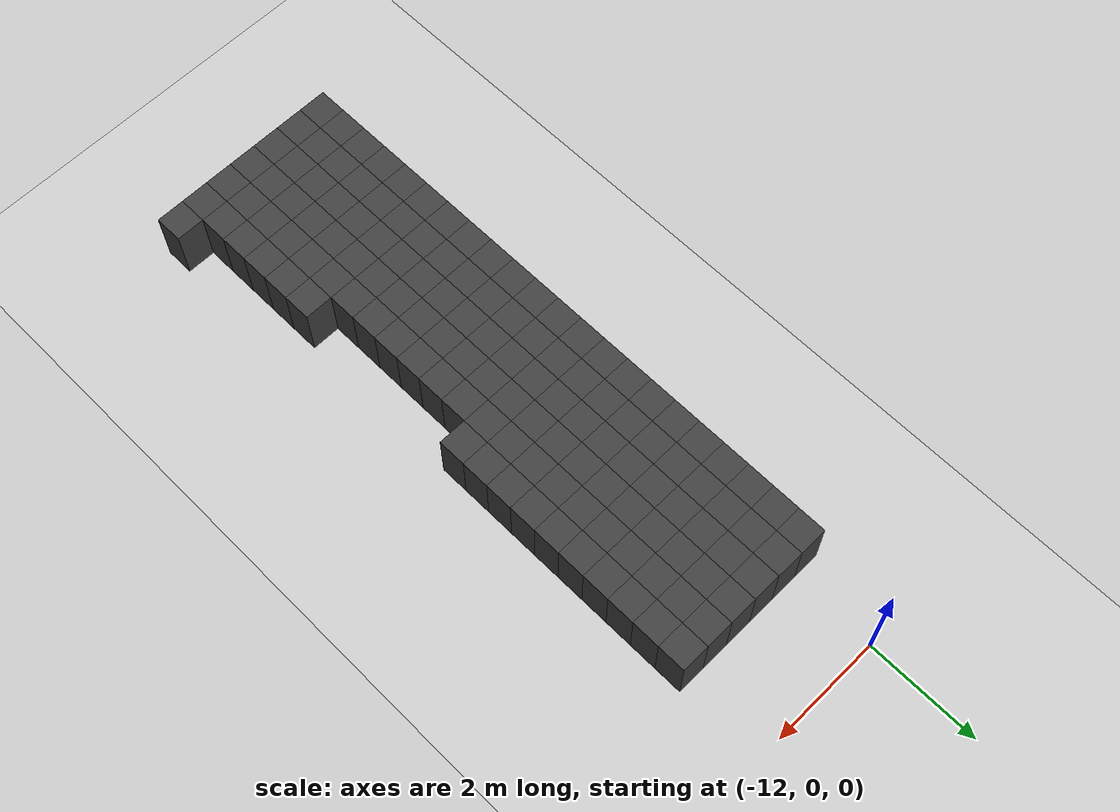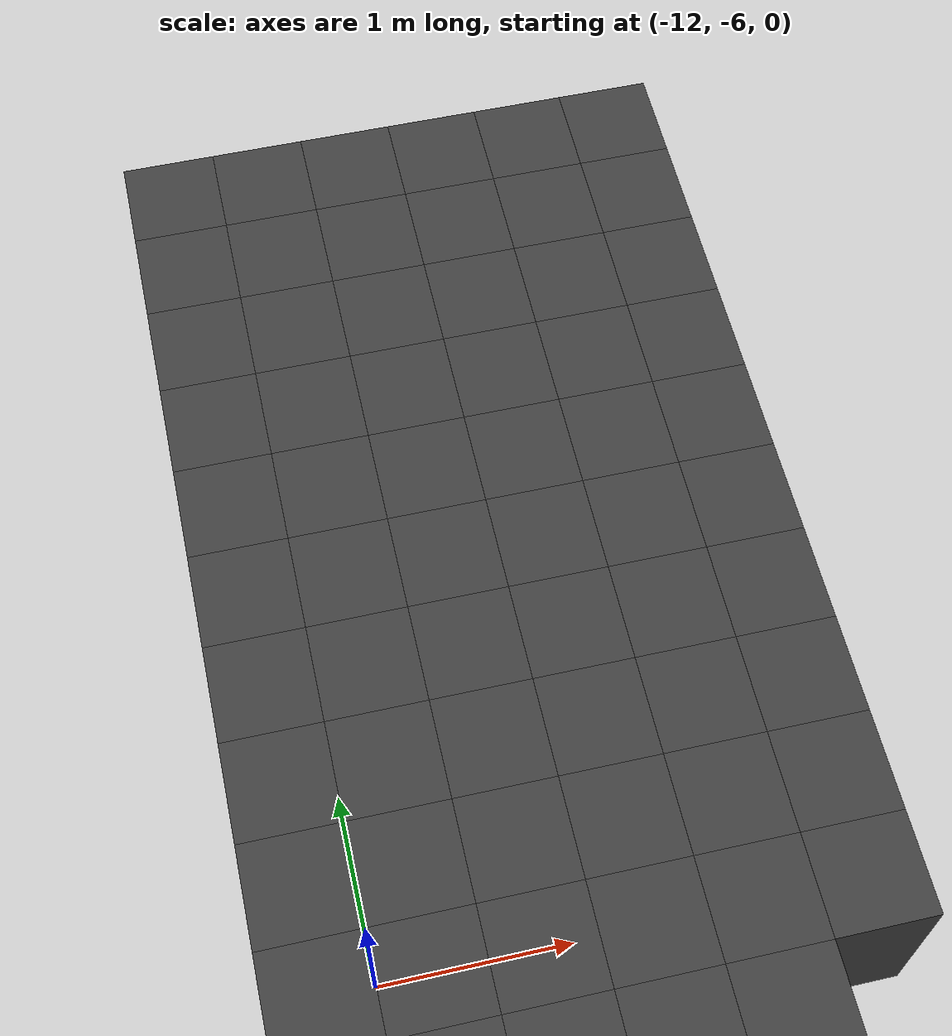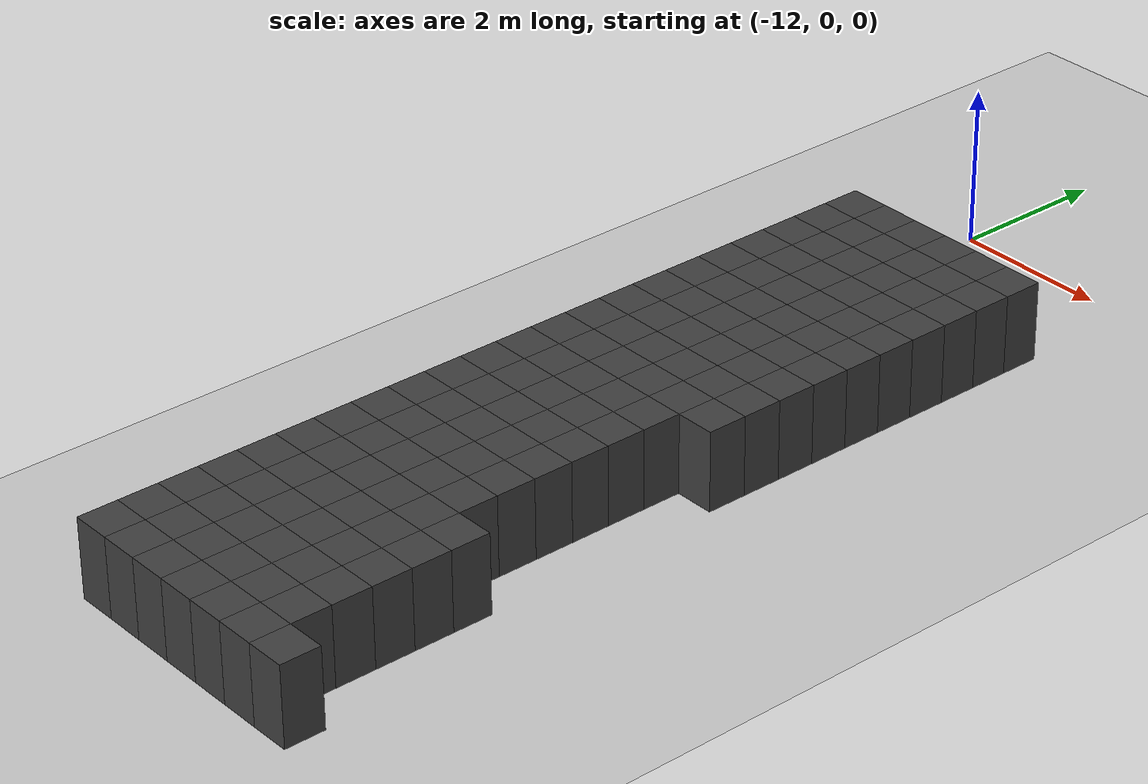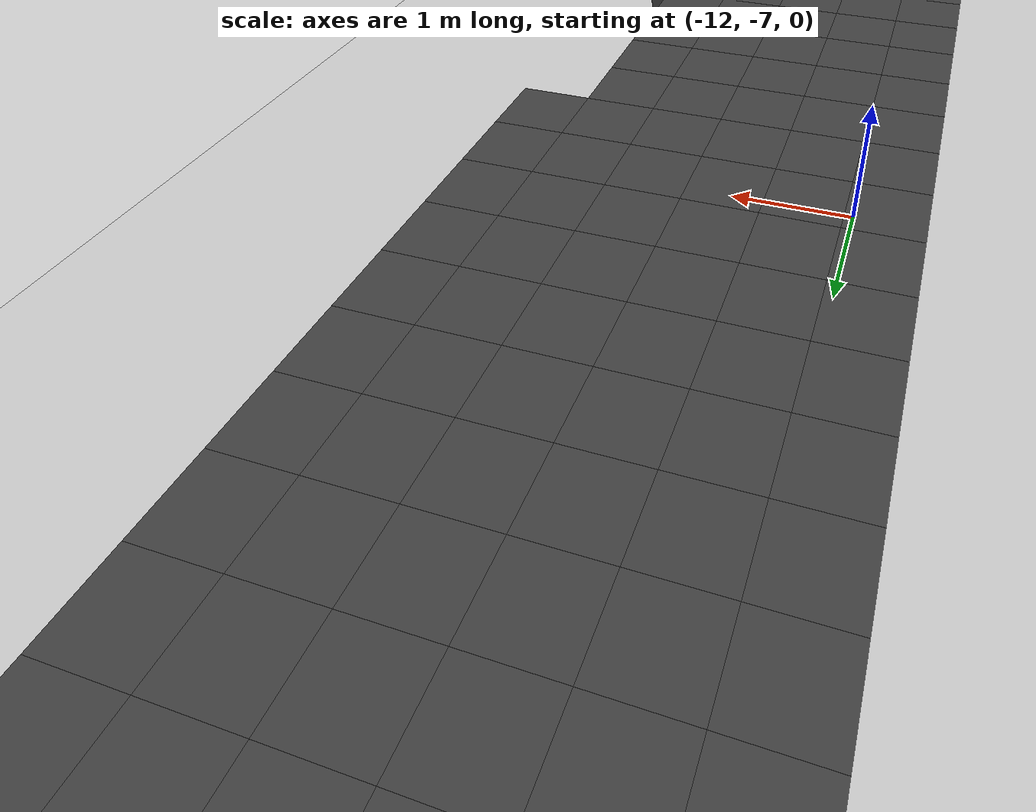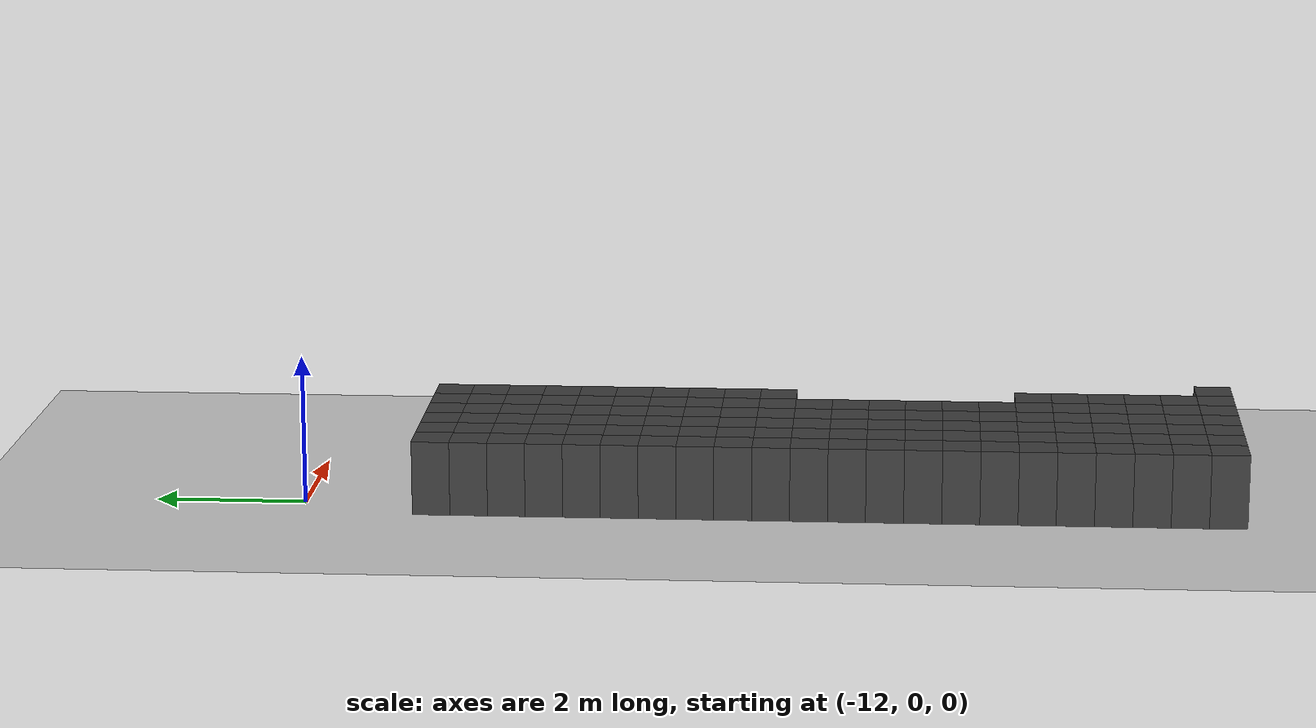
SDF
<sdf version="1.7">
 <world name="map_14980">
  <model name="ground_plane">
   <static>true</static>
   <link name="link">
    <collision name="collision">
     <geometry><plane><normal>0 0 1</normal><size>200 200</size></plane></geometry>
    </collision>
    <visual name="visual">
     <geometry><plane><normal>0 0 1</normal><size>200 200</size></plane></geometry>
     <material><ambient>0.8 0.8 0.8 1</ambient><diffuse>0.8 0.8 0.8 1</diffuse></material>
    </visual>
   </link>
  </model>
  <model name="maze_environment">
   <static>true</static>
   <link name="wall_990">
    <pose>-12.250 -1.750 0.500 0 0 0</pose>
    <collision name="col"><geometry><box><size>0.5 0.5 1.0</size></box></geometry></collision>
    <visual name="vis">
     <geometry><box><size>0.5 0.5 1.0</size></box></geometry>
     <material><ambient>0.15 0.15 0.15 1</ambient><diffuse>0.25 0.25 0.25 1</diffuse></material>
    </visual>
   </link>
   <link name="wall_991">
    <pose>-11.750 -1.750 0.500 0 0 0</pose>
    <collision name="col"><geometry><box><size>0.5 0.5 1.0</size></box></geometry></collision>
    <visual name="vis">
     <geometry><box><size>0.5 0.5 1.0</size></box></geometry>
     <material><ambient>0.15 0.15 0.15 1</ambient><diffuse>0.25 0.25 0.25 1</diffuse></material>
    </visual>
   </link>
   <link name="wall_992">
    <pose>-11.250 -1.750 0.500 0 0 0</pose>
    <collision name="col"><geometry><box><size>0.5 0.5 1.0</size></box></geometry></collision>
    <visual name="vis">
     <geometry><box><size>0.5 0.5 1.0</size></box></geometry>
     <material><ambient>0.15 0.15 0.15 1</ambient><diffuse>0.25 0.25 0.25 1</diffuse></material>
    </visual>
   </link>
   <link name="wall_993">
    <pose>-10.750 -1.750 0.500 0 0 0</pose>
    <collision name="col"><geometry><box><size>0.5 0.5 1.0</size></box></geometry></collision>
    <visual name="vis">
     <geometry><box><size>0.5 0.5 1.0</size></box></geometry>
     <material><ambient>0.15 0.15 0.15 1</ambient><diffuse>0.25 0.25 0.25 1</diffuse></material>
    </visual>
   </link>
   <link name="wall_994">
    <pose>-10.250 -1.750 0.500 0 0 0</pose>
    <collision name="col"><geometry><box><size>0.5 0.5 1.0</size></box></geometry></collision>
    <visual name="vis">
     <geometry><box><size>0.5 0.5 1.0</size></box></geometry>
     <material><ambient>0.15 0.15 0.15 1</ambient><diffuse>0.25 0.25 0.25 1</diffuse></material>
    </visual>
   </link>
   <link name="wall_995">
    <pose>-9.750 -1.750 0.500 0 0 0</pose>
    <collision name="col"><geometry><box><size>0.5 0.5 1.0</size></box></geometry></collision>
    <visual name="vis">
     <geometry><box><size>0.5 0.5 1.0</size></box></geometry>
     <material><ambient>0.15 0.15 0.15 1</ambient><diffuse>0.25 0.25 0.25 1</diffuse></material>
    </visual>
   </link>
   <link name="wall_1029">
    <pose>-12.250 -2.250 0.500 0 0 0</pose>
    <collision name="col"><geometry><box><size>0.5 0.5 1.0</size></box></geometry></collision>
    <visual name="vis">
     <geometry><box><size>0.5 0.5 1.0</size></box></geometry>
     <material><ambient>0.15 0.15 0.15 1</ambient><diffuse>0.25 0.25 0.25 1</diffuse></material>
    </visual>
   </link>
   <link name="wall_1030">
    <pose>-11.750 -2.250 0.500 0 0 0</pose>
    <collision name="col"><geometry><box><size>0.5 0.5 1.0</size></box></geometry></collision>
    <visual name="vis">
     <geometry><box><size>0.5 0.5 1.0</size></box></geometry>
     <material><ambient>0.15 0.15 0.15 1</ambient><diffuse>0.25 0.25 0.25 1</diffuse></material>
    </visual>
   </link>
   <link name="wall_1031">
    <pose>-11.250 -2.250 0.500 0 0 0</pose>
    <collision name="col"><geometry><box><size>0.5 0.5 1.0</size></box></geometry></collision>
    <visual name="vis">
     <geometry><box><size>0.5 0.5 1.0</size></box></geometry>
     <material><ambient>0.15 0.15 0.15 1</ambient><diffuse>0.25 0.25 0.25 1</diffuse></material>
    </visual>
   </link>
   <link name="wall_1032">
    <pose>-10.750 -2.250 0.500 0 0 0</pose>
    <collision name="col"><geometry><box><size>0.5 0.5 1.0</size></box></geometry></collision>
    <visual name="vis">
     <geometry><box><size>0.5 0.5 1.0</size></box></geometry>
     <material><ambient>0.15 0.15 0.15 1</ambient><diffuse>0.25 0.25 0.25 1</diffuse></material>
    </visual>
   </link>
   <link name="wall_1033">
    <pose>-10.250 -2.250 0.500 0 0 0</pose>
    <collision name="col"><geometry><box><size>0.5 0.5 1.0</size></box></geometry></collision>
    <visual name="vis">
     <geometry><box><size>0.5 0.5 1.0</size></box></geometry>
     <material><ambient>0.15 0.15 0.15 1</ambient><diffuse>0.25 0.25 0.25 1</diffuse></material>
    </visual>
   </link>
   <link name="wall_1034">
    <pose>-9.750 -2.250 0.500 0 0 0</pose>
    <collision name="col"><geometry><box><size>0.5 0.5 1.0</size></box></geometry></collision>
    <visual name="vis">
     <geometry><box><size>0.5 0.5 1.0</size></box></geometry>
     <material><ambient>0.15 0.15 0.15 1</ambient><diffuse>0.25 0.25 0.25 1</diffuse></material>
    </visual>
   </link>
   <link name="wall_1065">
    <pose>-12.250 -2.750 0.500 0 0 0</pose>
    <collision name="col"><geometry><box><size>0.5 0.5 1.0</size></box></geometry></collision>
    <visual name="vis">
     <geometry><box><size>0.5 0.5 1.0</size></box></geometry>
     <material><ambient>0.15 0.15 0.15 1</ambient><diffuse>0.25 0.25 0.25 1</diffuse></material>
    </visual>
   </link>
   <link name="wall_1066">
    <pose>-11.750 -2.750 0.500 0 0 0</pose>
    <collision name="col"><geometry><box><size>0.5 0.5 1.0</size></box></geometry></collision>
    <visual name="vis">
     <geometry><box><size>0.5 0.5 1.0</size></box></geometry>
     <material><ambient>0.15 0.15 0.15 1</ambient><diffuse>0.25 0.25 0.25 1</diffuse></material>
    </visual>
   </link>
   <link name="wall_1067">
    <pose>-11.250 -2.750 0.500 0 0 0</pose>
    <collision name="col"><geometry><box><size>0.5 0.5 1.0</size></box></geometry></collision>
    <visual name="vis">
     <geometry><box><size>0.5 0.5 1.0</size></box></geometry>
     <material><ambient>0.15 0.15 0.15 1</ambient><diffuse>0.25 0.25 0.25 1</diffuse></material>
    </visual>
   </link>
   <link name="wall_1068">
    <pose>-10.750 -2.750 0.500 0 0 0</pose>
    <collision name="col"><geometry><box><size>0.5 0.5 1.0</size></box></geometry></collision>
    <visual name="vis">
     <geometry><box><size>0.5 0.5 1.0</size></box></geometry>
     <material><ambient>0.15 0.15 0.15 1</ambient><diffuse>0.25 0.25 0.25 1</diffuse></material>
    </visual>
   </link>
   <link name="wall_1069">
    <pose>-10.250 -2.750 0.500 0 0 0</pose>
    <collision name="col"><geometry><box><size>0.5 0.5 1.0</size></box></geometry></collision>
    <visual name="vis">
     <geometry><box><size>0.5 0.5 1.0</size></box></geometry>
     <material><ambient>0.15 0.15 0.15 1</ambient><diffuse>0.25 0.25 0.25 1</diffuse></material>
    </visual>
   </link>
   <link name="wall_1070">
    <pose>-9.750 -2.750 0.500 0 0 0</pose>
    <collision name="col"><geometry><box><size>0.5 0.5 1.0</size></box></geometry></collision>
    <visual name="vis">
     <geometry><box><size>0.5 0.5 1.0</size></box></geometry>
     <material><ambient>0.15 0.15 0.15 1</ambient><diffuse>0.25 0.25 0.25 1</diffuse></material>
    </visual>
   </link>
   <link name="wall_1101">
    <pose>-12.250 -3.250 0.500 0 0 0</pose>
    <collision name="col"><geometry><box><size>0.5 0.5 1.0</size></box></geometry></collision>
    <visual name="vis">
     <geometry><box><size>0.5 0.5 1.0</size></box></geometry>
     <material><ambient>0.15 0.15 0.15 1</ambient><diffuse>0.25 0.25 0.25 1</diffuse></material>
    </visual>
   </link>
   <link name="wall_1102">
    <pose>-11.750 -3.250 0.500 0 0 0</pose>
    <collision name="col"><geometry><box><size>0.5 0.5 1.0</size></box></geometry></collision>
    <visual name="vis">
     <geometry><box><size>0.5 0.5 1.0</size></box></geometry>
     <material><ambient>0.15 0.15 0.15 1</ambient><diffuse>0.25 0.25 0.25 1</diffuse></material>
    </visual>
   </link>
   <link name="wall_1103">
    <pose>-11.250 -3.250 0.500 0 0 0</pose>
    <collision name="col"><geometry><box><size>0.5 0.5 1.0</size></box></geometry></collision>
    <visual name="vis">
     <geometry><box><size>0.5 0.5 1.0</size></box></geometry>
     <material><ambient>0.15 0.15 0.15 1</ambient><diffuse>0.25 0.25 0.25 1</diffuse></material>
    </visual>
   </link>
   <link name="wall_1104">
    <pose>-10.750 -3.250 0.500 0 0 0</pose>
    <collision name="col"><geometry><box><size>0.5 0.5 1.0</size></box></geometry></collision>
    <visual name="vis">
     <geometry><box><size>0.5 0.5 1.0</size></box></geometry>
     <material><ambient>0.15 0.15 0.15 1</ambient><diffuse>0.25 0.25 0.25 1</diffuse></material>
    </visual>
   </link>
   <link name="wall_1105">
    <pose>-10.250 -3.250 0.500 0 0 0</pose>
    <collision name="col"><geometry><box><size>0.5 0.5 1.0</size></box></geometry></collision>
    <visual name="vis">
     <geometry><box><size>0.5 0.5 1.0</size></box></geometry>
     <material><ambient>0.15 0.15 0.15 1</ambient><diffuse>0.25 0.25 0.25 1</diffuse></material>
    </visual>
   </link>
   <link name="wall_1106">
    <pose>-9.750 -3.250 0.500 0 0 0</pose>
    <collision name="col"><geometry><box><size>0.5 0.5 1.0</size></box></geometry></collision>
    <visual name="vis">
     <geometry><box><size>0.5 0.5 1.0</size></box></geometry>
     <material><ambient>0.15 0.15 0.15 1</ambient><diffuse>0.25 0.25 0.25 1</diffuse></material>
    </visual>
   </link>
   <link name="wall_1139">
    <pose>-12.250 -3.750 0.500 0 0 0</pose>
    <collision name="col"><geometry><box><size>0.5 0.5 1.0</size></box></geometry></collision>
    <visual name="vis">
     <geometry><box><size>0.5 0.5 1.0</size></box></geometry>
     <material><ambient>0.15 0.15 0.15 1</ambient><diffuse>0.25 0.25 0.25 1</diffuse></material>
    </visual>
   </link>
   <link name="wall_1140">
    <pose>-11.750 -3.750 0.500 0 0 0</pose>
    <collision name="col"><geometry><box><size>0.5 0.5 1.0</size></box></geometry></collision>
    <visual name="vis">
     <geometry><box><size>0.5 0.5 1.0</size></box></geometry>
     <material><ambient>0.15 0.15 0.15 1</ambient><diffuse>0.25 0.25 0.25 1</diffuse></material>
    </visual>
   </link>
   <link name="wall_1141">
    <pose>-11.250 -3.750 0.500 0 0 0</pose>
    <collision name="col"><geometry><box><size>0.5 0.5 1.0</size></box></geometry></collision>
    <visual name="vis">
     <geometry><box><size>0.5 0.5 1.0</size></box></geometry>
     <material><ambient>0.15 0.15 0.15 1</ambient><diffuse>0.25 0.25 0.25 1</diffuse></material>
    </visual>
   </link>
   <link name="wall_1142">
    <pose>-10.750 -3.750 0.500 0 0 0</pose>
    <collision name="col"><geometry><box><size>0.5 0.5 1.0</size></box></geometry></collision>
    <visual name="vis">
     <geometry><box><size>0.5 0.5 1.0</size></box></geometry>
     <material><ambient>0.15 0.15 0.15 1</ambient><diffuse>0.25 0.25 0.25 1</diffuse></material>
    </visual>
   </link>
   <link name="wall_1143">
    <pose>-10.250 -3.750 0.500 0 0 0</pose>
    <collision name="col"><geometry><box><size>0.5 0.5 1.0</size></box></geometry></collision>
    <visual name="vis">
     <geometry><box><size>0.5 0.5 1.0</size></box></geometry>
     <material><ambient>0.15 0.15 0.15 1</ambient><diffuse>0.25 0.25 0.25 1</diffuse></material>
    </visual>
   </link>
   <link name="wall_1144">
    <pose>-9.750 -3.750 0.500 0 0 0</pose>
    <collision name="col"><geometry><box><size>0.5 0.5 1.0</size></box></geometry></collision>
    <visual name="vis">
     <geometry><box><size>0.5 0.5 1.0</size></box></geometry>
     <material><ambient>0.15 0.15 0.15 1</ambient><diffuse>0.25 0.25 0.25 1</diffuse></material>
    </visual>
   </link>
   <link name="wall_1184">
    <pose>-12.250 -4.250 0.500 0 0 0</pose>
    <collision name="col"><geometry><box><size>0.5 0.5 1.0</size></box></geometry></collision>
    <visual name="vis">
     <geometry><box><size>0.5 0.5 1.0</size></box></geometry>
     <material><ambient>0.15 0.15 0.15 1</ambient><diffuse>0.25 0.25 0.25 1</diffuse></material>
    </visual>
   </link>
   <link name="wall_1185">
    <pose>-11.750 -4.250 0.500 0 0 0</pose>
    <collision name="col"><geometry><box><size>0.5 0.5 1.0</size></box></geometry></collision>
    <visual name="vis">
     <geometry><box><size>0.5 0.5 1.0</size></box></geometry>
     <material><ambient>0.15 0.15 0.15 1</ambient><diffuse>0.25 0.25 0.25 1</diffuse></material>
    </visual>
   </link>
   <link name="wall_1186">
    <pose>-11.250 -4.250 0.500 0 0 0</pose>
    <collision name="col"><geometry><box><size>0.5 0.5 1.0</size></box></geometry></collision>
    <visual name="vis">
     <geometry><box><size>0.5 0.5 1.0</size></box></geometry>
     <material><ambient>0.15 0.15 0.15 1</ambient><diffuse>0.25 0.25 0.25 1</diffuse></material>
    </visual>
   </link>
   <link name="wall_1187">
    <pose>-10.750 -4.250 0.500 0 0 0</pose>
    <collision name="col"><geometry><box><size>0.5 0.5 1.0</size></box></geometry></collision>
    <visual name="vis">
     <geometry><box><size>0.5 0.5 1.0</size></box></geometry>
     <material><ambient>0.15 0.15 0.15 1</ambient><diffuse>0.25 0.25 0.25 1</diffuse></material>
    </visual>
   </link>
   <link name="wall_1188">
    <pose>-10.250 -4.250 0.500 0 0 0</pose>
    <collision name="col"><geometry><box><size>0.5 0.5 1.0</size></box></geometry></collision>
    <visual name="vis">
     <geometry><box><size>0.5 0.5 1.0</size></box></geometry>
     <material><ambient>0.15 0.15 0.15 1</ambient><diffuse>0.25 0.25 0.25 1</diffuse></material>
    </visual>
   </link>
   <link name="wall_1189">
    <pose>-9.750 -4.250 0.500 0 0 0</pose>
    <collision name="col"><geometry><box><size>0.5 0.5 1.0</size></box></geometry></collision>
    <visual name="vis">
     <geometry><box><size>0.5 0.5 1.0</size></box></geometry>
     <material><ambient>0.15 0.15 0.15 1</ambient><diffuse>0.25 0.25 0.25 1</diffuse></material>
    </visual>
   </link>
   <link name="wall_1229">
    <pose>-12.250 -4.750 0.500 0 0 0</pose>
    <collision name="col"><geometry><box><size>0.5 0.5 1.0</size></box></geometry></collision>
    <visual name="vis">
     <geometry><box><size>0.5 0.5 1.0</size></box></geometry>
     <material><ambient>0.15 0.15 0.15 1</ambient><diffuse>0.25 0.25 0.25 1</diffuse></material>
    </visual>
   </link>
   <link name="wall_1230">
    <pose>-11.750 -4.750 0.500 0 0 0</pose>
    <collision name="col"><geometry><box><size>0.5 0.5 1.0</size></box></geometry></collision>
    <visual name="vis">
     <geometry><box><size>0.5 0.5 1.0</size></box></geometry>
     <material><ambient>0.15 0.15 0.15 1</ambient><diffuse>0.25 0.25 0.25 1</diffuse></material>
    </visual>
   </link>
   <link name="wall_1231">
    <pose>-11.250 -4.750 0.500 0 0 0</pose>
    <collision name="col"><geometry><box><size>0.5 0.5 1.0</size></box></geometry></collision>
    <visual name="vis">
     <geometry><box><size>0.5 0.5 1.0</size></box></geometry>
     <material><ambient>0.15 0.15 0.15 1</ambient><diffuse>0.25 0.25 0.25 1</diffuse></material>
    </visual>
   </link>
   <link name="wall_1232">
    <pose>-10.750 -4.750 0.500 0 0 0</pose>
    <collision name="col"><geometry><box><size>0.5 0.5 1.0</size></box></geometry></collision>
    <visual name="vis">
     <geometry><box><size>0.5 0.5 1.0</size></box></geometry>
     <material><ambient>0.15 0.15 0.15 1</ambient><diffuse>0.25 0.25 0.25 1</diffuse></material>
    </visual>
   </link>
   <link name="wall_1233">
    <pose>-10.250 -4.750 0.500 0 0 0</pose>
    <collision name="col"><geometry><box><size>0.5 0.5 1.0</size></box></geometry></collision>
    <visual name="vis">
     <geometry><box><size>0.5 0.5 1.0</size></box></geometry>
     <material><ambient>0.15 0.15 0.15 1</ambient><diffuse>0.25 0.25 0.25 1</diffuse></material>
    </visual>
   </link>
   <link name="wall_1234">
    <pose>-9.750 -4.750 0.500 0 0 0</pose>
    <collision name="col"><geometry><box><size>0.5 0.5 1.0</size></box></geometry></collision>
    <visual name="vis">
     <geometry><box><size>0.5 0.5 1.0</size></box></geometry>
     <material><ambient>0.15 0.15 0.15 1</ambient><diffuse>0.25 0.25 0.25 1</diffuse></material>
    </visual>
   </link>
   <link name="wall_1270">
    <pose>-12.250 -5.250 0.500 0 0 0</pose>
    <collision name="col"><geometry><box><size>0.5 0.5 1.0</size></box></geometry></collision>
    <visual name="vis">
     <geometry><box><size>0.5 0.5 1.0</size></box></geometry>
     <material><ambient>0.15 0.15 0.15 1</ambient><diffuse>0.25 0.25 0.25 1</diffuse></material>
    </visual>
   </link>
   <link name="wall_1271">
    <pose>-11.750 -5.250 0.500 0 0 0</pose>
    <collision name="col"><geometry><box><size>0.5 0.5 1.0</size></box></geometry></collision>
    <visual name="vis">
     <geometry><box><size>0.5 0.5 1.0</size></box></geometry>
     <material><ambient>0.15 0.15 0.15 1</ambient><diffuse>0.25 0.25 0.25 1</diffuse></material>
    </visual>
   </link>
   <link name="wall_1272">
    <pose>-11.250 -5.250 0.500 0 0 0</pose>
    <collision name="col"><geometry><box><size>0.5 0.5 1.0</size></box></geometry></collision>
    <visual name="vis">
     <geometry><box><size>0.5 0.5 1.0</size></box></geometry>
     <material><ambient>0.15 0.15 0.15 1</ambient><diffuse>0.25 0.25 0.25 1</diffuse></material>
    </visual>
   </link>
   <link name="wall_1273">
    <pose>-10.750 -5.250 0.500 0 0 0</pose>
    <collision name="col"><geometry><box><size>0.5 0.5 1.0</size></box></geometry></collision>
    <visual name="vis">
     <geometry><box><size>0.5 0.5 1.0</size></box></geometry>
     <material><ambient>0.15 0.15 0.15 1</ambient><diffuse>0.25 0.25 0.25 1</diffuse></material>
    </visual>
   </link>
   <link name="wall_1274">
    <pose>-10.250 -5.250 0.500 0 0 0</pose>
    <collision name="col"><geometry><box><size>0.5 0.5 1.0</size></box></geometry></collision>
    <visual name="vis">
     <geometry><box><size>0.5 0.5 1.0</size></box></geometry>
     <material><ambient>0.15 0.15 0.15 1</ambient><diffuse>0.25 0.25 0.25 1</diffuse></material>
    </visual>
   </link>
   <link name="wall_1275">
    <pose>-9.750 -5.250 0.500 0 0 0</pose>
    <collision name="col"><geometry><box><size>0.5 0.5 1.0</size></box></geometry></collision>
    <visual name="vis">
     <geometry><box><size>0.5 0.5 1.0</size></box></geometry>
     <material><ambient>0.15 0.15 0.15 1</ambient><diffuse>0.25 0.25 0.25 1</diffuse></material>
    </visual>
   </link>
   <link name="wall_1314">
    <pose>-12.250 -5.750 0.500 0 0 0</pose>
    <collision name="col"><geometry><box><size>0.5 0.5 1.0</size></box></geometry></collision>
    <visual name="vis">
     <geometry><box><size>0.5 0.5 1.0</size></box></geometry>
     <material><ambient>0.15 0.15 0.15 1</ambient><diffuse>0.25 0.25 0.25 1</diffuse></material>
    </visual>
   </link>
   <link name="wall_1315">
    <pose>-11.750 -5.750 0.500 0 0 0</pose>
    <collision name="col"><geometry><box><size>0.5 0.5 1.0</size></box></geometry></collision>
    <visual name="vis">
     <geometry><box><size>0.5 0.5 1.0</size></box></geometry>
     <material><ambient>0.15 0.15 0.15 1</ambient><diffuse>0.25 0.25 0.25 1</diffuse></material>
    </visual>
   </link>
   <link name="wall_1316">
    <pose>-11.250 -5.750 0.500 0 0 0</pose>
    <collision name="col"><geometry><box><size>0.5 0.5 1.0</size></box></geometry></collision>
    <visual name="vis">
     <geometry><box><size>0.5 0.5 1.0</size></box></geometry>
     <material><ambient>0.15 0.15 0.15 1</ambient><diffuse>0.25 0.25 0.25 1</diffuse></material>
    </visual>
   </link>
   <link name="wall_1317">
    <pose>-10.750 -5.750 0.500 0 0 0</pose>
    <collision name="col"><geometry><box><size>0.5 0.5 1.0</size></box></geometry></collision>
    <visual name="vis">
     <geometry><box><size>0.5 0.5 1.0</size></box></geometry>
     <material><ambient>0.15 0.15 0.15 1</ambient><diffuse>0.25 0.25 0.25 1</diffuse></material>
    </visual>
   </link>
   <link name="wall_1318">
    <pose>-10.250 -5.750 0.500 0 0 0</pose>
    <collision name="col"><geometry><box><size>0.5 0.5 1.0</size></box></geometry></collision>
    <visual name="vis">
     <geometry><box><size>0.5 0.5 1.0</size></box></geometry>
     <material><ambient>0.15 0.15 0.15 1</ambient><diffuse>0.25 0.25 0.25 1</diffuse></material>
    </visual>
   </link>
   <link name="wall_1319">
    <pose>-9.750 -5.750 0.500 0 0 0</pose>
    <collision name="col"><geometry><box><size>0.5 0.5 1.0</size></box></geometry></collision>
    <visual name="vis">
     <geometry><box><size>0.5 0.5 1.0</size></box></geometry>
     <material><ambient>0.15 0.15 0.15 1</ambient><diffuse>0.25 0.25 0.25 1</diffuse></material>
    </visual>
   </link>
   <link name="wall_1358">
    <pose>-12.250 -6.250 0.500 0 0 0</pose>
    <collision name="col"><geometry><box><size>0.5 0.5 1.0</size></box></geometry></collision>
    <visual name="vis">
     <geometry><box><size>0.5 0.5 1.0</size></box></geometry>
     <material><ambient>0.15 0.15 0.15 1</ambient><diffuse>0.25 0.25 0.25 1</diffuse></material>
    </visual>
   </link>
   <link name="wall_1359">
    <pose>-11.750 -6.250 0.500 0 0 0</pose>
    <collision name="col"><geometry><box><size>0.5 0.5 1.0</size></box></geometry></collision>
    <visual name="vis">
     <geometry><box><size>0.5 0.5 1.0</size></box></geometry>
     <material><ambient>0.15 0.15 0.15 1</ambient><diffuse>0.25 0.25 0.25 1</diffuse></material>
    </visual>
   </link>
   <link name="wall_1360">
    <pose>-11.250 -6.250 0.500 0 0 0</pose>
    <collision name="col"><geometry><box><size>0.5 0.5 1.0</size></box></geometry></collision>
    <visual name="vis">
     <geometry><box><size>0.5 0.5 1.0</size></box></geometry>
     <material><ambient>0.15 0.15 0.15 1</ambient><diffuse>0.25 0.25 0.25 1</diffuse></material>
    </visual>
   </link>
   <link name="wall_1361">
    <pose>-10.750 -6.250 0.500 0 0 0</pose>
    <collision name="col"><geometry><box><size>0.5 0.5 1.0</size></box></geometry></collision>
    <visual name="vis">
     <geometry><box><size>0.5 0.5 1.0</size></box></geometry>
     <material><ambient>0.15 0.15 0.15 1</ambient><diffuse>0.25 0.25 0.25 1</diffuse></material>
    </visual>
   </link>
   <link name="wall_1362">
    <pose>-10.250 -6.250 0.500 0 0 0</pose>
    <collision name="col"><geometry><box><size>0.5 0.5 1.0</size></box></geometry></collision>
    <visual name="vis">
     <geometry><box><size>0.5 0.5 1.0</size></box></geometry>
     <material><ambient>0.15 0.15 0.15 1</ambient><diffuse>0.25 0.25 0.25 1</diffuse></material>
    </visual>
   </link>
   <link name="wall_1363">
    <pose>-9.750 -6.250 0.500 0 0 0</pose>
    <collision name="col"><geometry><box><size>0.5 0.5 1.0</size></box></geometry></collision>
    <visual name="vis">
     <geometry><box><size>0.5 0.5 1.0</size></box></geometry>
     <material><ambient>0.15 0.15 0.15 1</ambient><diffuse>0.25 0.25 0.25 1</diffuse></material>
    </visual>
   </link>
   <link name="wall_1402">
    <pose>-12.250 -6.750 0.500 0 0 0</pose>
    <collision name="col"><geometry><box><size>0.5 0.5 1.0</size></box></geometry></collision>
    <visual name="vis">
     <geometry><box><size>0.5 0.5 1.0</size></box></geometry>
     <material><ambient>0.15 0.15 0.15 1</ambient><diffuse>0.25 0.25 0.25 1</diffuse></material>
    </visual>
   </link>
   <link name="wall_1403">
    <pose>-11.750 -6.750 0.500 0 0 0</pose>
    <collision name="col"><geometry><box><size>0.5 0.5 1.0</size></box></geometry></collision>
    <visual name="vis">
     <geometry><box><size>0.5 0.5 1.0</size></box></geometry>
     <material><ambient>0.15 0.15 0.15 1</ambient><diffuse>0.25 0.25 0.25 1</diffuse></material>
    </visual>
   </link>
   <link name="wall_1404">
    <pose>-11.250 -6.750 0.500 0 0 0</pose>
    <collision name="col"><geometry><box><size>0.5 0.5 1.0</size></box></geometry></collision>
    <visual name="vis">
     <geometry><box><size>0.5 0.5 1.0</size></box></geometry>
     <material><ambient>0.15 0.15 0.15 1</ambient><diffuse>0.25 0.25 0.25 1</diffuse></material>
    </visual>
   </link>
   <link name="wall_1405">
    <pose>-10.750 -6.750 0.500 0 0 0</pose>
    <collision name="col"><geometry><box><size>0.5 0.5 1.0</size></box></geometry></collision>
    <visual name="vis">
     <geometry><box><size>0.5 0.5 1.0</size></box></geometry>
     <material><ambient>0.15 0.15 0.15 1</ambient><diffuse>0.25 0.25 0.25 1</diffuse></material>
    </visual>
   </link>
   <link name="wall_1406">
    <pose>-10.250 -6.750 0.500 0 0 0</pose>
    <collision name="col"><geometry><box><size>0.5 0.5 1.0</size></box></geometry></collision>
    <visual name="vis">
     <geometry><box><size>0.5 0.5 1.0</size></box></geometry>
     <material><ambient>0.15 0.15 0.15 1</ambient><diffuse>0.25 0.25 0.25 1</diffuse></material>
    </visual>
   </link>
   <link name="wall_1435">
    <pose>-12.250 -7.250 0.500 0 0 0</pose>
    <collision name="col"><geometry><box><size>0.5 0.5 1.0</size></box></geometry></collision>
    <visual name="vis">
     <geometry><box><size>0.5 0.5 1.0</size></box></geometry>
     <material><ambient>0.15 0.15 0.15 1</ambient><diffuse>0.25 0.25 0.25 1</diffuse></material>
    </visual>
   </link>
   <link name="wall_1436">
    <pose>-11.750 -7.250 0.500 0 0 0</pose>
    <collision name="col"><geometry><box><size>0.5 0.5 1.0</size></box></geometry></collision>
    <visual name="vis">
     <geometry><box><size>0.5 0.5 1.0</size></box></geometry>
     <material><ambient>0.15 0.15 0.15 1</ambient><diffuse>0.25 0.25 0.25 1</diffuse></material>
    </visual>
   </link>
   <link name="wall_1437">
    <pose>-11.250 -7.250 0.500 0 0 0</pose>
    <collision name="col"><geometry><box><size>0.5 0.5 1.0</size></box></geometry></collision>
    <visual name="vis">
     <geometry><box><size>0.5 0.5 1.0</size></box></geometry>
     <material><ambient>0.15 0.15 0.15 1</ambient><diffuse>0.25 0.25 0.25 1</diffuse></material>
    </visual>
   </link>
   <link name="wall_1438">
    <pose>-10.750 -7.250 0.500 0 0 0</pose>
    <collision name="col"><geometry><box><size>0.5 0.5 1.0</size></box></geometry></collision>
    <visual name="vis">
     <geometry><box><size>0.5 0.5 1.0</size></box></geometry>
     <material><ambient>0.15 0.15 0.15 1</ambient><diffuse>0.25 0.25 0.25 1</diffuse></material>
    </visual>
   </link>
   <link name="wall_1439">
    <pose>-10.250 -7.250 0.500 0 0 0</pose>
    <collision name="col"><geometry><box><size>0.5 0.5 1.0</size></box></geometry></collision>
    <visual name="vis">
     <geometry><box><size>0.5 0.5 1.0</size></box></geometry>
     <material><ambient>0.15 0.15 0.15 1</ambient><diffuse>0.25 0.25 0.25 1</diffuse></material>
    </visual>
   </link>
   <link name="wall_1459">
    <pose>-12.250 -7.750 0.500 0 0 0</pose>
    <collision name="col"><geometry><box><size>0.5 0.5 1.0</size></box></geometry></collision>
    <visual name="vis">
     <geometry><box><size>0.5 0.5 1.0</size></box></geometry>
     <material><ambient>0.15 0.15 0.15 1</ambient><diffuse>0.25 0.25 0.25 1</diffuse></material>
    </visual>
   </link>
   <link name="wall_1460">
    <pose>-11.750 -7.750 0.500 0 0 0</pose>
    <collision name="col"><geometry><box><size>0.5 0.5 1.0</size></box></geometry></collision>
    <visual name="vis">
     <geometry><box><size>0.5 0.5 1.0</size></box></geometry>
     <material><ambient>0.15 0.15 0.15 1</ambient><diffuse>0.25 0.25 0.25 1</diffuse></material>
    </visual>
   </link>
   <link name="wall_1461">
    <pose>-11.250 -7.750 0.500 0 0 0</pose>
    <collision name="col"><geometry><box><size>0.5 0.5 1.0</size></box></geometry></collision>
    <visual name="vis">
     <geometry><box><size>0.5 0.5 1.0</size></box></geometry>
     <material><ambient>0.15 0.15 0.15 1</ambient><diffuse>0.25 0.25 0.25 1</diffuse></material>
    </visual>
   </link>
   <link name="wall_1462">
    <pose>-10.750 -7.750 0.500 0 0 0</pose>
    <collision name="col"><geometry><box><size>0.5 0.5 1.0</size></box></geometry></collision>
    <visual name="vis">
     <geometry><box><size>0.5 0.5 1.0</size></box></geometry>
     <material><ambient>0.15 0.15 0.15 1</ambient><diffuse>0.25 0.25 0.25 1</diffuse></material>
    </visual>
   </link>
   <link name="wall_1463">
    <pose>-10.250 -7.750 0.500 0 0 0</pose>
    <collision name="col"><geometry><box><size>0.5 0.5 1.0</size></box></geometry></collision>
    <visual name="vis">
     <geometry><box><size>0.5 0.5 1.0</size></box></geometry>
     <material><ambient>0.15 0.15 0.15 1</ambient><diffuse>0.25 0.25 0.25 1</diffuse></material>
    </visual>
   </link>
   <link name="wall_1483">
    <pose>-12.250 -8.250 0.500 0 0 0</pose>
    <collision name="col"><geometry><box><size>0.5 0.5 1.0</size></box></geometry></collision>
    <visual name="vis">
     <geometry><box><size>0.5 0.5 1.0</size></box></geometry>
     <material><ambient>0.15 0.15 0.15 1</ambient><diffuse>0.25 0.25 0.25 1</diffuse></material>
    </visual>
   </link>
   <link name="wall_1484">
    <pose>-11.750 -8.250 0.500 0 0 0</pose>
    <collision name="col"><geometry><box><size>0.5 0.5 1.0</size></box></geometry></collision>
    <visual name="vis">
     <geometry><box><size>0.5 0.5 1.0</size></box></geometry>
     <material><ambient>0.15 0.15 0.15 1</ambient><diffuse>0.25 0.25 0.25 1</diffuse></material>
    </visual>
   </link>
   <link name="wall_1485">
    <pose>-11.250 -8.250 0.500 0 0 0</pose>
    <collision name="col"><geometry><box><size>0.5 0.5 1.0</size></box></geometry></collision>
    <visual name="vis">
     <geometry><box><size>0.5 0.5 1.0</size></box></geometry>
     <material><ambient>0.15 0.15 0.15 1</ambient><diffuse>0.25 0.25 0.25 1</diffuse></material>
    </visual>
   </link>
   <link name="wall_1486">
    <pose>-10.750 -8.250 0.500 0 0 0</pose>
    <collision name="col"><geometry><box><size>0.5 0.5 1.0</size></box></geometry></collision>
    <visual name="vis">
     <geometry><box><size>0.5 0.5 1.0</size></box></geometry>
     <material><ambient>0.15 0.15 0.15 1</ambient><diffuse>0.25 0.25 0.25 1</diffuse></material>
    </visual>
   </link>
   <link name="wall_1487">
    <pose>-10.250 -8.250 0.500 0 0 0</pose>
    <collision name="col"><geometry><box><size>0.5 0.5 1.0</size></box></geometry></collision>
    <visual name="vis">
     <geometry><box><size>0.5 0.5 1.0</size></box></geometry>
     <material><ambient>0.15 0.15 0.15 1</ambient><diffuse>0.25 0.25 0.25 1</diffuse></material>
    </visual>
   </link>
   <link name="wall_1507">
    <pose>-12.250 -8.750 0.500 0 0 0</pose>
    <collision name="col"><geometry><box><size>0.5 0.5 1.0</size></box></geometry></collision>
    <visual name="vis">
     <geometry><box><size>0.5 0.5 1.0</size></box></geometry>
     <material><ambient>0.15 0.15 0.15 1</ambient><diffuse>0.25 0.25 0.25 1</diffuse></material>
    </visual>
   </link>
   <link name="wall_1508">
    <pose>-11.750 -8.750 0.500 0 0 0</pose>
    <collision name="col"><geometry><box><size>0.5 0.5 1.0</size></box></geometry></collision>
    <visual name="vis">
     <geometry><box><size>0.5 0.5 1.0</size></box></geometry>
     <material><ambient>0.15 0.15 0.15 1</ambient><diffuse>0.25 0.25 0.25 1</diffuse></material>
    </visual>
   </link>
   <link name="wall_1509">
    <pose>-11.250 -8.750 0.500 0 0 0</pose>
    <collision name="col"><geometry><box><size>0.5 0.5 1.0</size></box></geometry></collision>
    <visual name="vis">
     <geometry><box><size>0.5 0.5 1.0</size></box></geometry>
     <material><ambient>0.15 0.15 0.15 1</ambient><diffuse>0.25 0.25 0.25 1</diffuse></material>
    </visual>
   </link>
   <link name="wall_1510">
    <pose>-10.750 -8.750 0.500 0 0 0</pose>
    <collision name="col"><geometry><box><size>0.5 0.5 1.0</size></box></geometry></collision>
    <visual name="vis">
     <geometry><box><size>0.5 0.5 1.0</size></box></geometry>
     <material><ambient>0.15 0.15 0.15 1</ambient><diffuse>0.25 0.25 0.25 1</diffuse></material>
    </visual>
   </link>
   <link name="wall_1511">
    <pose>-10.250 -8.750 0.500 0 0 0</pose>
    <collision name="col"><geometry><box><size>0.5 0.5 1.0</size></box></geometry></collision>
    <visual name="vis">
     <geometry><box><size>0.5 0.5 1.0</size></box></geometry>
     <material><ambient>0.15 0.15 0.15 1</ambient><diffuse>0.25 0.25 0.25 1</diffuse></material>
    </visual>
   </link>
   <link name="wall_1533">
    <pose>-12.250 -9.250 0.500 0 0 0</pose>
    <collision name="col"><geometry><box><size>0.5 0.5 1.0</size></box></geometry></collision>
    <visual name="vis">
     <geometry><box><size>0.5 0.5 1.0</size></box></geometry>
     <material><ambient>0.15 0.15 0.15 1</ambient><diffuse>0.25 0.25 0.25 1</diffuse></material>
    </visual>
   </link>
   <link name="wall_1534">
    <pose>-11.750 -9.250 0.500 0 0 0</pose>
    <collision name="col"><geometry><box><size>0.5 0.5 1.0</size></box></geometry></collision>
    <visual name="vis">
     <geometry><box><size>0.5 0.5 1.0</size></box></geometry>
     <material><ambient>0.15 0.15 0.15 1</ambient><diffuse>0.25 0.25 0.25 1</diffuse></material>
    </visual>
   </link>
   <link name="wall_1535">
    <pose>-11.250 -9.250 0.500 0 0 0</pose>
    <collision name="col"><geometry><box><size>0.5 0.5 1.0</size></box></geometry></collision>
    <visual name="vis">
     <geometry><box><size>0.5 0.5 1.0</size></box></geometry>
     <material><ambient>0.15 0.15 0.15 1</ambient><diffuse>0.25 0.25 0.25 1</diffuse></material>
    </visual>
   </link>
   <link name="wall_1536">
    <pose>-10.750 -9.250 0.500 0 0 0</pose>
    <collision name="col"><geometry><box><size>0.5 0.5 1.0</size></box></geometry></collision>
    <visual name="vis">
     <geometry><box><size>0.5 0.5 1.0</size></box></geometry>
     <material><ambient>0.15 0.15 0.15 1</ambient><diffuse>0.25 0.25 0.25 1</diffuse></material>
    </visual>
   </link>
   <link name="wall_1537">
    <pose>-10.250 -9.250 0.500 0 0 0</pose>
    <collision name="col"><geometry><box><size>0.5 0.5 1.0</size></box></geometry></collision>
    <visual name="vis">
     <geometry><box><size>0.5 0.5 1.0</size></box></geometry>
     <material><ambient>0.15 0.15 0.15 1</ambient><diffuse>0.25 0.25 0.25 1</diffuse></material>
    </visual>
   </link>
   <link name="wall_1560">
    <pose>-12.250 -9.750 0.500 0 0 0</pose>
    <collision name="col"><geometry><box><size>0.5 0.5 1.0</size></box></geometry></collision>
    <visual name="vis">
     <geometry><box><size>0.5 0.5 1.0</size></box></geometry>
     <material><ambient>0.15 0.15 0.15 1</ambient><diffuse>0.25 0.25 0.25 1</diffuse></material>
    </visual>
   </link>
   <link name="wall_1561">
    <pose>-11.750 -9.750 0.500 0 0 0</pose>
    <collision name="col"><geometry><box><size>0.5 0.5 1.0</size></box></geometry></collision>
    <visual name="vis">
     <geometry><box><size>0.5 0.5 1.0</size></box></geometry>
     <material><ambient>0.15 0.15 0.15 1</ambient><diffuse>0.25 0.25 0.25 1</diffuse></material>
    </visual>
   </link>
   <link name="wall_1562">
    <pose>-11.250 -9.750 0.500 0 0 0</pose>
    <collision name="col"><geometry><box><size>0.5 0.5 1.0</size></box></geometry></collision>
    <visual name="vis">
     <geometry><box><size>0.5 0.5 1.0</size></box></geometry>
     <material><ambient>0.15 0.15 0.15 1</ambient><diffuse>0.25 0.25 0.25 1</diffuse></material>
    </visual>
   </link>
   <link name="wall_1563">
    <pose>-10.750 -9.750 0.500 0 0 0</pose>
    <collision name="col"><geometry><box><size>0.5 0.5 1.0</size></box></geometry></collision>
    <visual name="vis">
     <geometry><box><size>0.5 0.5 1.0</size></box></geometry>
     <material><ambient>0.15 0.15 0.15 1</ambient><diffuse>0.25 0.25 0.25 1</diffuse></material>
    </visual>
   </link>
   <link name="wall_1564">
    <pose>-10.250 -9.750 0.500 0 0 0</pose>
    <collision name="col"><geometry><box><size>0.5 0.5 1.0</size></box></geometry></collision>
    <visual name="vis">
     <geometry><box><size>0.5 0.5 1.0</size></box></geometry>
     <material><ambient>0.15 0.15 0.15 1</ambient><diffuse>0.25 0.25 0.25 1</diffuse></material>
    </visual>
   </link>
   <link name="wall_1565">
    <pose>-9.750 -9.750 0.500 0 0 0</pose>
    <collision name="col"><geometry><box><size>0.5 0.5 1.0</size></box></geometry></collision>
    <visual name="vis">
     <geometry><box><size>0.5 0.5 1.0</size></box></geometry>
     <material><ambient>0.15 0.15 0.15 1</ambient><diffuse>0.25 0.25 0.25 1</diffuse></material>
    </visual>
   </link>
   <link name="wall_1591">
    <pose>-12.250 -10.250 0.500 0 0 0</pose>
    <collision name="col"><geometry><box><size>0.5 0.5 1.0</size></box></geometry></collision>
    <visual name="vis">
     <geometry><box><size>0.5 0.5 1.0</size></box></geometry>
     <material><ambient>0.15 0.15 0.15 1</ambient><diffuse>0.25 0.25 0.25 1</diffuse></material>
    </visual>
   </link>
   <link name="wall_1592">
    <pose>-11.750 -10.250 0.500 0 0 0</pose>
    <collision name="col"><geometry><box><size>0.5 0.5 1.0</size></box></geometry></collision>
    <visual name="vis">
     <geometry><box><size>0.5 0.5 1.0</size></box></geometry>
     <material><ambient>0.15 0.15 0.15 1</ambient><diffuse>0.25 0.25 0.25 1</diffuse></material>
    </visual>
   </link>
   <link name="wall_1593">
    <pose>-11.250 -10.250 0.500 0 0 0</pose>
    <collision name="col"><geometry><box><size>0.5 0.5 1.0</size></box></geometry></collision>
    <visual name="vis">
     <geometry><box><size>0.5 0.5 1.0</size></box></geometry>
     <material><ambient>0.15 0.15 0.15 1</ambient><diffuse>0.25 0.25 0.25 1</diffuse></material>
    </visual>
   </link>
   <link name="wall_1594">
    <pose>-10.750 -10.250 0.500 0 0 0</pose>
    <collision name="col"><geometry><box><size>0.5 0.5 1.0</size></box></geometry></collision>
    <visual name="vis">
     <geometry><box><size>0.5 0.5 1.0</size></box></geometry>
     <material><ambient>0.15 0.15 0.15 1</ambient><diffuse>0.25 0.25 0.25 1</diffuse></material>
    </visual>
   </link>
   <link name="wall_1595">
    <pose>-10.250 -10.250 0.500 0 0 0</pose>
    <collision name="col"><geometry><box><size>0.5 0.5 1.0</size></box></geometry></collision>
    <visual name="vis">
     <geometry><box><size>0.5 0.5 1.0</size></box></geometry>
     <material><ambient>0.15 0.15 0.15 1</ambient><diffuse>0.25 0.25 0.25 1</diffuse></material>
    </visual>
   </link>
   <link name="wall_1596">
    <pose>-9.750 -10.250 0.500 0 0 0</pose>
    <collision name="col"><geometry><box><size>0.5 0.5 1.0</size></box></geometry></collision>
    <visual name="vis">
     <geometry><box><size>0.5 0.5 1.0</size></box></geometry>
     <material><ambient>0.15 0.15 0.15 1</ambient><diffuse>0.25 0.25 0.25 1</diffuse></material>
    </visual>
   </link>
   <link name="wall_1622">
    <pose>-12.250 -10.750 0.500 0 0 0</pose>
    <collision name="col"><geometry><box><size>0.5 0.5 1.0</size></box></geometry></collision>
    <visual name="vis">
     <geometry><box><size>0.5 0.5 1.0</size></box></geometry>
     <material><ambient>0.15 0.15 0.15 1</ambient><diffuse>0.25 0.25 0.25 1</diffuse></material>
    </visual>
   </link>
   <link name="wall_1623">
    <pose>-11.750 -10.750 0.500 0 0 0</pose>
    <collision name="col"><geometry><box><size>0.5 0.5 1.0</size></box></geometry></collision>
    <visual name="vis">
     <geometry><box><size>0.5 0.5 1.0</size></box></geometry>
     <material><ambient>0.15 0.15 0.15 1</ambient><diffuse>0.25 0.25 0.25 1</diffuse></material>
    </visual>
   </link>
   <link name="wall_1624">
    <pose>-11.250 -10.750 0.500 0 0 0</pose>
    <collision name="col"><geometry><box><size>0.5 0.5 1.0</size></box></geometry></collision>
    <visual name="vis">
     <geometry><box><size>0.5 0.5 1.0</size></box></geometry>
     <material><ambient>0.15 0.15 0.15 1</ambient><diffuse>0.25 0.25 0.25 1</diffuse></material>
    </visual>
   </link>
   <link name="wall_1625">
    <pose>-10.750 -10.750 0.500 0 0 0</pose>
    <collision name="col"><geometry><box><size>0.5 0.5 1.0</size></box></geometry></collision>
    <visual name="vis">
     <geometry><box><size>0.5 0.5 1.0</size></box></geometry>
     <material><ambient>0.15 0.15 0.15 1</ambient><diffuse>0.25 0.25 0.25 1</diffuse></material>
    </visual>
   </link>
   <link name="wall_1626">
    <pose>-10.250 -10.750 0.500 0 0 0</pose>
    <collision name="col"><geometry><box><size>0.5 0.5 1.0</size></box></geometry></collision>
    <visual name="vis">
     <geometry><box><size>0.5 0.5 1.0</size></box></geometry>
     <material><ambient>0.15 0.15 0.15 1</ambient><diffuse>0.25 0.25 0.25 1</diffuse></material>
    </visual>
   </link>
   <link name="wall_1627">
    <pose>-9.750 -10.750 0.500 0 0 0</pose>
    <collision name="col"><geometry><box><size>0.5 0.5 1.0</size></box></geometry></collision>
    <visual name="vis">
     <geometry><box><size>0.5 0.5 1.0</size></box></geometry>
     <material><ambient>0.15 0.15 0.15 1</ambient><diffuse>0.25 0.25 0.25 1</diffuse></material>
    </visual>
   </link>
   <link name="wall_1655">
    <pose>-12.250 -11.250 0.500 0 0 0</pose>
    <collision name="col"><geometry><box><size>0.5 0.5 1.0</size></box></geometry></collision>
    <visual name="vis">
     <geometry><box><size>0.5 0.5 1.0</size></box></geometry>
     <material><ambient>0.15 0.15 0.15 1</ambient><diffuse>0.25 0.25 0.25 1</diffuse></material>
    </visual>
   </link>
   <link name="wall_1656">
    <pose>-11.750 -11.250 0.500 0 0 0</pose>
    <collision name="col"><geometry><box><size>0.5 0.5 1.0</size></box></geometry></collision>
    <visual name="vis">
     <geometry><box><size>0.5 0.5 1.0</size></box></geometry>
     <material><ambient>0.15 0.15 0.15 1</ambient><diffuse>0.25 0.25 0.25 1</diffuse></material>
    </visual>
   </link>
   <link name="wall_1657">
    <pose>-11.250 -11.250 0.500 0 0 0</pose>
    <collision name="col"><geometry><box><size>0.5 0.5 1.0</size></box></geometry></collision>
    <visual name="vis">
     <geometry><box><size>0.5 0.5 1.0</size></box></geometry>
     <material><ambient>0.15 0.15 0.15 1</ambient><diffuse>0.25 0.25 0.25 1</diffuse></material>
    </visual>
   </link>
   <link name="wall_1658">
    <pose>-10.750 -11.250 0.500 0 0 0</pose>
    <collision name="col"><geometry><box><size>0.5 0.5 1.0</size></box></geometry></collision>
    <visual name="vis">
     <geometry><box><size>0.5 0.5 1.0</size></box></geometry>
     <material><ambient>0.15 0.15 0.15 1</ambient><diffuse>0.25 0.25 0.25 1</diffuse></material>
    </visual>
   </link>
   <link name="wall_1659">
    <pose>-10.250 -11.250 0.500 0 0 0</pose>
    <collision name="col"><geometry><box><size>0.5 0.5 1.0</size></box></geometry></collision>
    <visual name="vis">
     <geometry><box><size>0.5 0.5 1.0</size></box></geometry>
     <material><ambient>0.15 0.15 0.15 1</ambient><diffuse>0.25 0.25 0.25 1</diffuse></material>
    </visual>
   </link>
   <link name="wall_1660">
    <pose>-9.750 -11.250 0.500 0 0 0</pose>
    <collision name="col"><geometry><box><size>0.5 0.5 1.0</size></box></geometry></collision>
    <visual name="vis">
     <geometry><box><size>0.5 0.5 1.0</size></box></geometry>
     <material><ambient>0.15 0.15 0.15 1</ambient><diffuse>0.25 0.25 0.25 1</diffuse></material>
    </visual>
   </link>
   <link name="wall_1691">
    <pose>-12.250 -11.750 0.500 0 0 0</pose>
    <collision name="col"><geometry><box><size>0.5 0.5 1.0</size></box></geometry></collision>
    <visual name="vis">
     <geometry><box><size>0.5 0.5 1.0</size></box></geometry>
     <material><ambient>0.15 0.15 0.15 1</ambient><diffuse>0.25 0.25 0.25 1</diffuse></material>
    </visual>
   </link>
   <link name="wall_1692">
    <pose>-11.750 -11.750 0.500 0 0 0</pose>
    <collision name="col"><geometry><box><size>0.5 0.5 1.0</size></box></geometry></collision>
    <visual name="vis">
     <geometry><box><size>0.5 0.5 1.0</size></box></geometry>
     <material><ambient>0.15 0.15 0.15 1</ambient><diffuse>0.25 0.25 0.25 1</diffuse></material>
    </visual>
   </link>
   <link name="wall_1693">
    <pose>-11.250 -11.750 0.500 0 0 0</pose>
    <collision name="col"><geometry><box><size>0.5 0.5 1.0</size></box></geometry></collision>
    <visual name="vis">
     <geometry><box><size>0.5 0.5 1.0</size></box></geometry>
     <material><ambient>0.15 0.15 0.15 1</ambient><diffuse>0.25 0.25 0.25 1</diffuse></material>
    </visual>
   </link>
   <link name="wall_1694">
    <pose>-10.750 -11.750 0.500 0 0 0</pose>
    <collision name="col"><geometry><box><size>0.5 0.5 1.0</size></box></geometry></collision>
    <visual name="vis">
     <geometry><box><size>0.5 0.5 1.0</size></box></geometry>
     <material><ambient>0.15 0.15 0.15 1</ambient><diffuse>0.25 0.25 0.25 1</diffuse></material>
    </visual>
   </link>
   <link name="wall_1695">
    <pose>-10.250 -11.750 0.500 0 0 0</pose>
    <collision name="col"><geometry><box><size>0.5 0.5 1.0</size></box></geometry></collision>
    <visual name="vis">
     <geometry><box><size>0.5 0.5 1.0</size></box></geometry>
     <material><ambient>0.15 0.15 0.15 1</ambient><diffuse>0.25 0.25 0.25 1</diffuse></material>
    </visual>
   </link>
   <link name="wall_1696">
    <pose>-9.750 -11.750 0.500 0 0 0</pose>
    <collision name="col"><geometry><box><size>0.5 0.5 1.0</size></box></geometry></collision>
    <visual name="vis">
     <geometry><box><size>0.5 0.5 1.0</size></box></geometry>
     <material><ambient>0.15 0.15 0.15 1</ambient><diffuse>0.25 0.25 0.25 1</diffuse></material>
    </visual>
   </link>
   <link name="wall_1738">
    <pose>-12.250 -12.250 0.500 0 0 0</pose>
    <collision name="col"><geometry><box><size>0.5 0.5 1.0</size></box></geometry></collision>
    <visual name="vis">
     <geometry><box><size>0.5 0.5 1.0</size></box></geometry>
     <material><ambient>0.15 0.15 0.15 1</ambient><diffuse>0.25 0.25 0.25 1</diffuse></material>
    </visual>
   </link>
   <link name="wall_1739">
    <pose>-11.750 -12.250 0.500 0 0 0</pose>
    <collision name="col"><geometry><box><size>0.5 0.5 1.0</size></box></geometry></collision>
    <visual name="vis">
     <geometry><box><size>0.5 0.5 1.0</size></box></geometry>
     <material><ambient>0.15 0.15 0.15 1</ambient><diffuse>0.25 0.25 0.25 1</diffuse></material>
    </visual>
   </link>
   <link name="wall_1740">
    <pose>-11.250 -12.250 0.500 0 0 0</pose>
    <collision name="col"><geometry><box><size>0.5 0.5 1.0</size></box></geometry></collision>
    <visual name="vis">
     <geometry><box><size>0.5 0.5 1.0</size></box></geometry>
     <material><ambient>0.15 0.15 0.15 1</ambient><diffuse>0.25 0.25 0.25 1</diffuse></material>
    </visual>
   </link>
   <link name="wall_1741">
    <pose>-10.750 -12.250 0.500 0 0 0</pose>
    <collision name="col"><geometry><box><size>0.5 0.5 1.0</size></box></geometry></collision>
    <visual name="vis">
     <geometry><box><size>0.5 0.5 1.0</size></box></geometry>
     <material><ambient>0.15 0.15 0.15 1</ambient><diffuse>0.25 0.25 0.25 1</diffuse></material>
    </visual>
   </link>
   <link name="wall_1742">
    <pose>-10.250 -12.250 0.500 0 0 0</pose>
    <collision name="col"><geometry><box><size>0.5 0.5 1.0</size></box></geometry></collision>
    <visual name="vis">
     <geometry><box><size>0.5 0.5 1.0</size></box></geometry>
     <material><ambient>0.15 0.15 0.15 1</ambient><diffuse>0.25 0.25 0.25 1</diffuse></material>
    </visual>
   </link>
   <link name="wall_1743">
    <pose>-9.750 -12.250 0.500 0 0 0</pose>
    <collision name="col"><geometry><box><size>0.5 0.5 1.0</size></box></geometry></collision>
    <visual name="vis">
     <geometry><box><size>0.5 0.5 1.0</size></box></geometry>
     <material><ambient>0.15 0.15 0.15 1</ambient><diffuse>0.25 0.25 0.25 1</diffuse></material>
    </visual>
   </link>
   <link name="wall_1744">
    <pose>-9.250 -12.250 0.500 0 0 0</pose>
    <collision name="col"><geometry><box><size>0.5 0.5 1.0</size></box></geometry></collision>
    <visual name="vis">
     <geometry><box><size>0.5 0.5 1.0</size></box></geometry>
     <material><ambient>0.15 0.15 0.15 1</ambient><diffuse>0.25 0.25 0.25 1</diffuse></material>
    </visual>
   </link>
  </model>
 </world>
</sdf>
